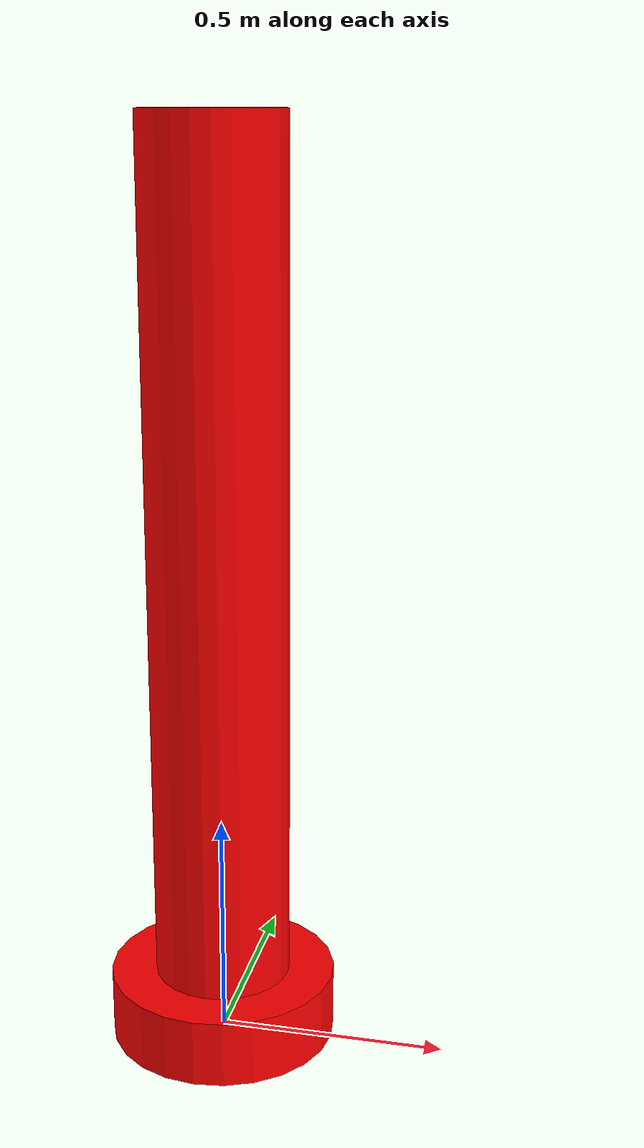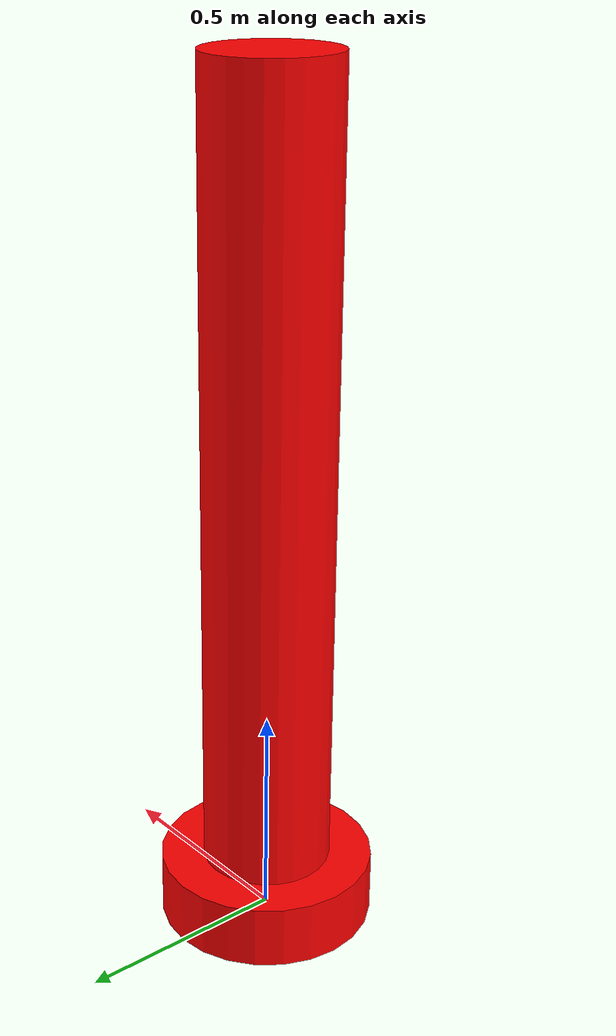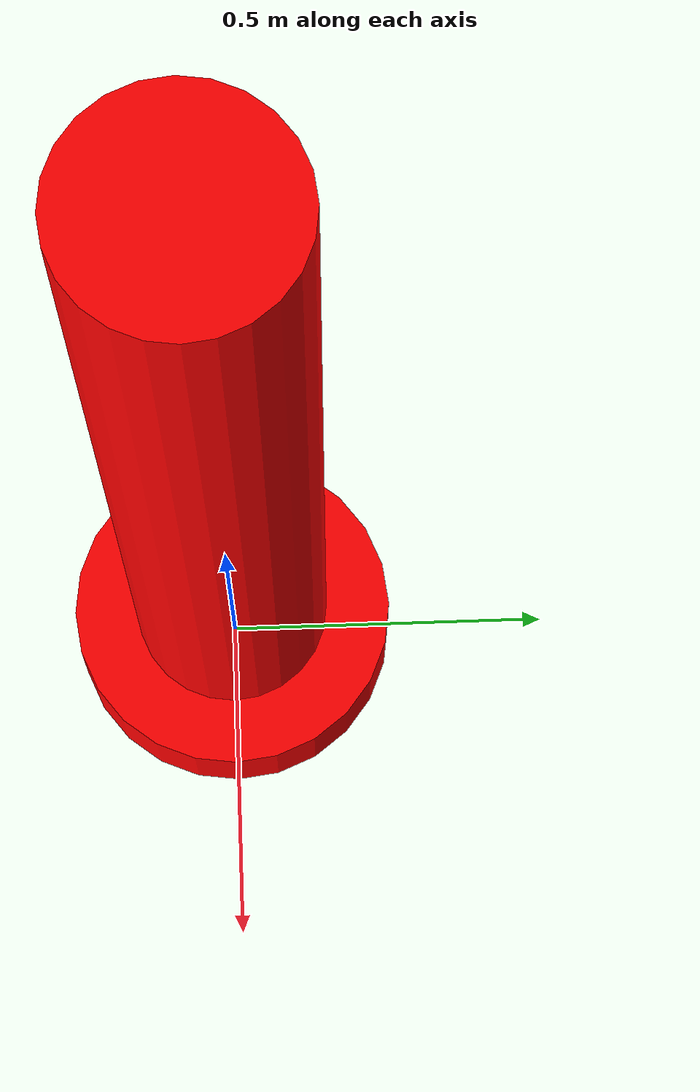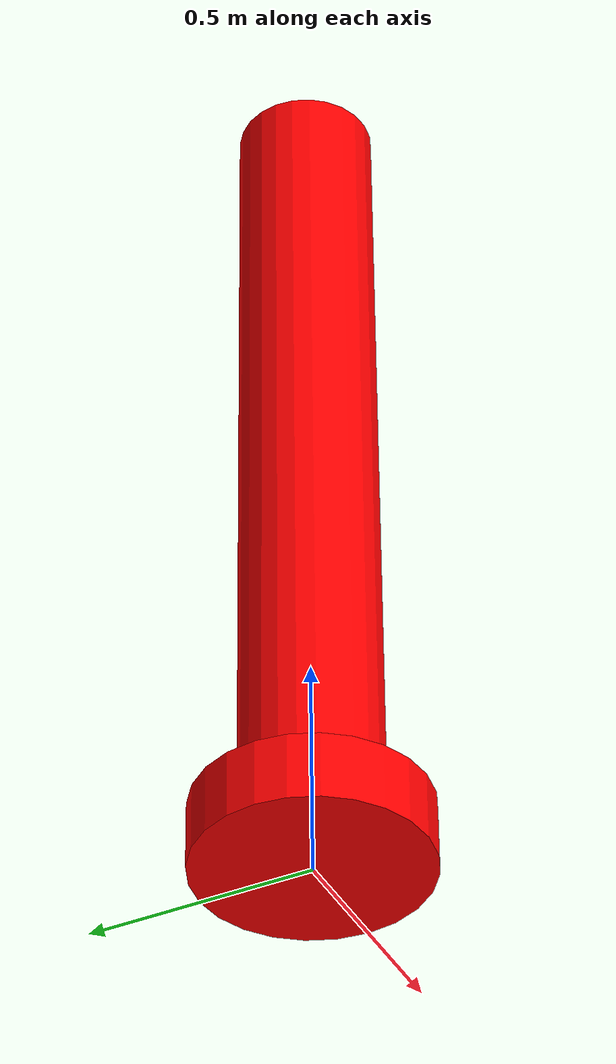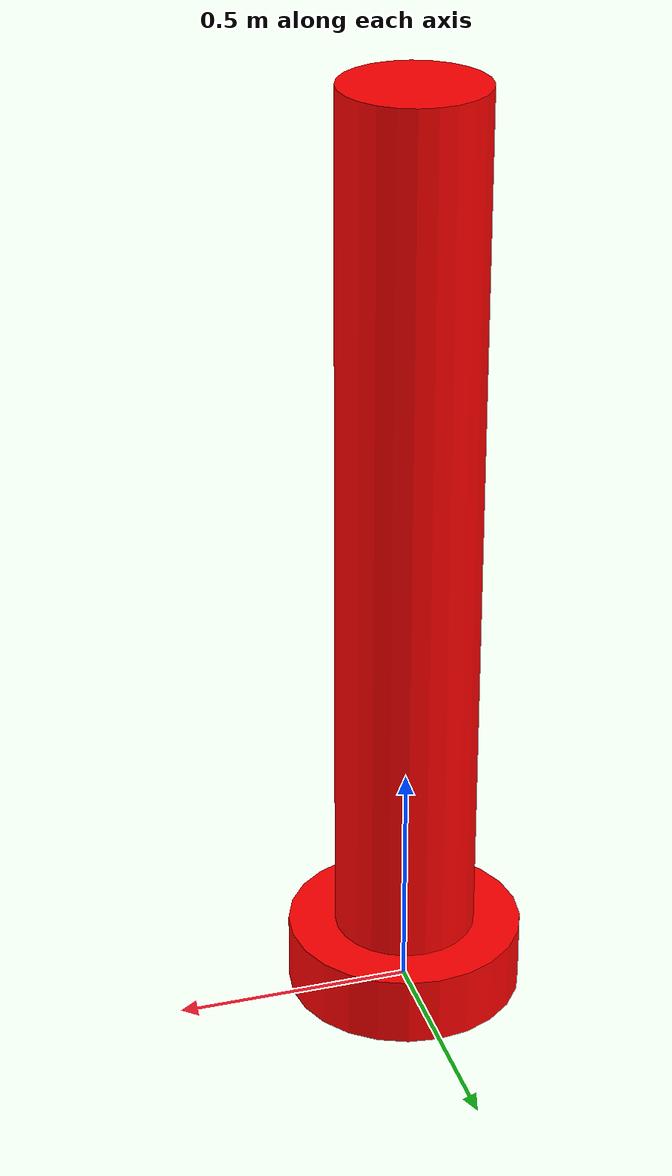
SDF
<?xml version="1.0"?>
<sdf version='1.11'>
    <model name="small_pillar_obstacle">
        <pose>0 0 0 0 0 0</pose>
        <static>true</static>
        <link name="link">
            <collision name="base_collision">
                <pose>0 0 0.075 0 0 0</pose>
                <geometry>
                    <cylinder>
                        <radius>0.25</radius>
                        <length>0.15</length>
                    </cylinder>
                </geometry>
            </collision>

            <collision name="shaft_collision">
                <pose>0 0 1.075 0 0 0</pose>
                <geometry>
                    <cylinder>
                        <radius>0.15</radius>
                        <length>1.85</length>
                    </cylinder>
                </geometry>
            </collision>

            <visual name="base_visual">
                <pose>0 0 0.075 0 0 0</pose>
                <geometry>
                    <cylinder>
                        <radius>0.25</radius>
                        <length>0.15</length>
                    </cylinder>
                </geometry>
                <material>
                    <ambient>1.0 0 0 1</ambient>
                    <diffuse>1.0 0 0 1</diffuse>
                    <specular>1.0 0 0 1</specular>
                </material>
            </visual>

            <visual name="shaft_visual">
                <pose>0 0 1.075 0 0 0</pose>
                <geometry>
                    <cylinder>
                        <radius>0.15</radius>
                        <length>1.85</length>
                    </cylinder>
                </geometry>
                <material>
                    <ambient>1.0 0 0 1</ambient>
                    <diffuse>1.0 0 0 1</diffuse>
                    <specular>1.0 0 0 1</specular>
                </material>
            </visual>
        </link>
    </model>
</sdf>
